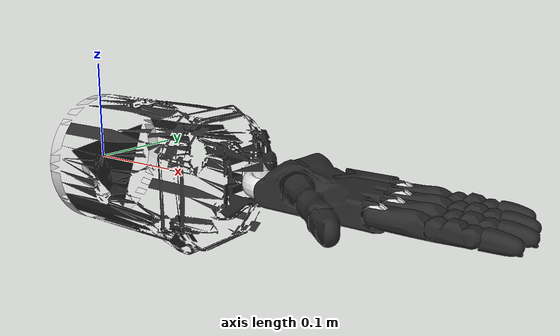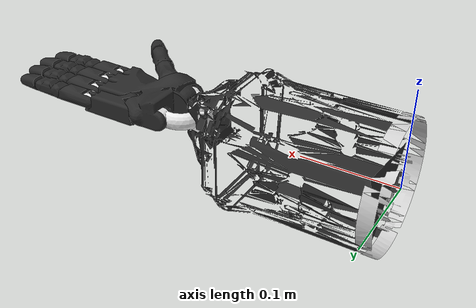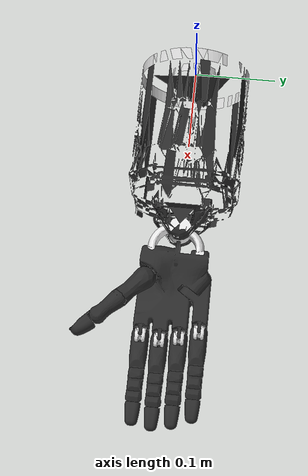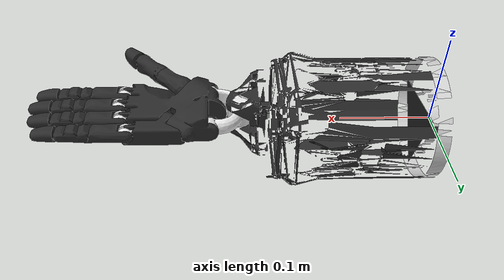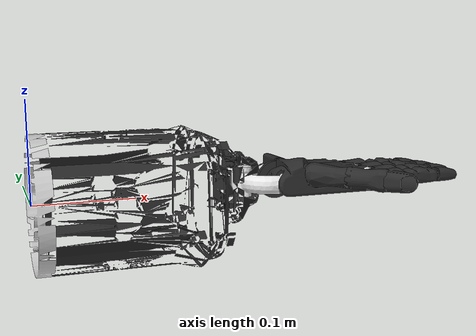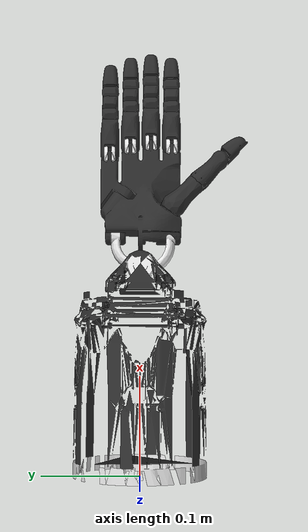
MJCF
<mujoco model="right_shadow_hand">
  <compiler angle="radian" meshdir="assets" autolimits="true"/>

  <option cone="elliptic" impratio="10"/>

  <default>
    <default class="right_hand">
      <mesh scale="0.001 0.001 0.001"/>
      <joint axis="1 0 0" damping="0.05" armature="0.0002" frictionloss="0.01"/>
      <position forcerange="-1 1"/>

      <default class="wrist">
        <joint damping="0.5"/>
        <default class="wrist_y">
          <joint axis="0 1 0" range="-0.523599 0.174533"/>
          <position kp="10" ctrlrange="-0.523599 0.174533" forcerange="-10 10"/>
        </default>
        <default class="wrist_x">
          <joint range="-0.698132 0.488692"/>
          <position kp="8" ctrlrange="-0.698132 0.488692" forcerange="-5 5"/>
        </default>
      </default>

      <default class="thumb">
        <default class="thbase">
          <joint axis="0 0 -1" range="-1.0472 1.0472"/>
          <position kp="0.4" ctrlrange="-1.0472 1.0472" forcerange="-3 3"/>
        </default>
        <default class="thproximal">
          <joint range="0 1.22173"/>
          <position ctrlrange="0 1.22173" forcerange="-2 2"/>
        </default>
        <default class="thhub">
          <joint range="-0.20944 0.20944"/>
          <position kp="0.5" ctrlrange="-0.20944 0.20944"/>
        </default>
        <default class="thmiddle">
          <joint axis="0 -1 0" range="-0.698132 0.698132"/>
          <position kp="1.5" ctrlrange="-0.698132 0.698132"/>
        </default>
        <default class="thdistal">
          <joint range="-0.261799 1.5708"/>
          <position ctrlrange="-0.261799 1.5708"/>
        </default>
      </default>

      <default class="metacarpal">
        <joint axis="0.573576 0 0.819152" range="0 0.785398"/>
        <position ctrlrange="0 0.785398"/>
      </default>
      <default class="knuckle">
        <joint axis="0 -1 0" range="-0.349066 0.349066"/>
        <position ctrlrange="-0.349066 0.349066"/>
      </default>
      <default class="proximal">
        <joint range="-0.261799 1.5708"/>
        <position ctrlrange="-0.261799 1.5708"/>
      </default>
      <default class="middle_distal">
        <joint range="0 1.5708"/>
        <position kp="0.5" ctrlrange="0 3.1415"/>
      </default>

      <default class="plastic">
        <geom solimp="0.5 0.99 0.0001" solref="0.005 1"/>
        <default class="plastic_visual">
          <geom type="mesh" material="black" contype="0" conaffinity="0" group="2"/>
        </default>
        <default class="plastic_collision">
          <geom group="3"/>
        </default>
      </default>
    </default>
  </default>

  <asset>
    <material name="black" specular="0.5" shininess="0.25" rgba="0.16355 0.16355 0.16355 1"/>
    <material name="gray" specular="0.0" shininess="0.25" rgba="0.80848 0.80848 0.80848 1"/>
    <material name="metallic" specular="0" shininess="0.25" rgba="0.9 0.9 0.9 1"/>

    <mesh name="forearm_0" class="right_hand" file="forearm_0.dec.stl"/>
    <mesh name="forearm_1" class="right_hand" file="forearm_1.dec.stl"/>
    <mesh name="forearm_collision" class="right_hand" file="forearm_collision.dec.stl"/>
    <mesh name="wrist" class="right_hand" file="wrist.dec.stl"/>
    <mesh name="palm" class="right_hand" file="palm.dec.stl"/>
    <mesh name="f_knuckle" class="right_hand" file="f_knuckle.dec.stl"/>
    <mesh name="f_proximal" class="right_hand" file="f_proximal.dec.stl"/>
    <mesh name="f_middle" class="right_hand" file="f_middle.dec.stl"/>
    <mesh name="f_distal_pst" class="right_hand" file="f_distal_pst.dec.stl"/>
    <mesh name="lf_metacarpal" class="right_hand" file="lf_metacarpal.dec.stl"/>
    <mesh name="th_proximal" class="right_hand" file="th_proximal.dec.stl"/>
    <mesh name="th_middle" class="right_hand" file="th_middle.dec.stl"/>
    <mesh name="th_distal_pst" class="right_hand" file="th_distal_pst.dec.stl"/>
  </asset>

  <worldbody>
    <body name="rh_forearm" childclass="right_hand" quat="0 1 0 1">
      <inertial mass="3" pos="0 0 0.09" diaginertia="0.0138 0.0138 0.00744"/>
      <geom class="plastic_visual" mesh="forearm_0" material="gray"/>
      <geom class="plastic_visual" mesh="forearm_1"/>
      <geom class="plastic_collision" type="mesh" mesh="forearm_collision"/>
      <geom class="plastic_collision" size="0.035 0.035 0.035" pos="0.01 0.0 0.181" quat="0.380188 0.924909 0 0"
        type="box"/>
      <body name="rh_wrist" pos="0.01 0 0.21301" quat="1 0 0 1">
        <inertial mass="0.1" pos="0 0 0.029" quat="0.5 0.5 0.5 0.5" diaginertia="6.4e-05 4.38e-05 3.5e-05"/>
        <joint class="wrist_y" name="rh_WRJ2"/>
        <geom class="plastic_visual" mesh="wrist" material="metallic"/>
        <geom size="0.0135 0.015" quat="0.499998 0.5 0.5 -0.500002" type="cylinder" class="plastic_collision"/>
        <geom size="0.011 0.005" pos="-0.026 0 0.034" quat="1 0 1 0" type="cylinder" class="plastic_collision"/>
        <geom size="0.011 0.005" pos="0.031 0 0.034" quat="1 0 1 0" type="cylinder" class="plastic_collision"/>
        <geom size="0.0135 0.009 0.005" pos="-0.021 0 0.011" quat="0.923879 0 0.382684 0" type="box"
          class="plastic_collision"/>
        <geom size="0.0135 0.009 0.005" pos="0.026 0 0.01" quat="0.923879 0 -0.382684 0" type="box"
          class="plastic_collision"/>
        <body name="rh_palm" pos="0 0 0.034">
          <inertial mass="0.3" pos="0 0 0.035" quat="1 0 0 1" diaginertia="0.0005287 0.0003581 0.000191"/>
          <joint class="wrist_x" name="rh_WRJ1"/>
          <site name="grasp_site" pos="0 -.035 0.09" group="4"/>
          <geom class="plastic_visual" mesh="palm"/>
          <geom size="0.031 0.0035 0.049" pos="0.011 0.0085 0.038" type="box" class="plastic_collision"/>
          <geom size="0.018 0.0085 0.049" pos="-0.002 -0.0035 0.038" type="box" class="plastic_collision"/>
          <geom size="0.013 0.0085 0.005" pos="0.029 -0.0035 0.082" type="box" class="plastic_collision"/>
          <geom size="0.013 0.007 0.009" pos="0.0265 -0.001 0.07" quat="0.987241 0.0990545 0.0124467 0.124052"
            type="box" class="plastic_collision"/>
          <geom size="0.0105 0.0135 0.012" pos="0.0315 -0.0085 0.001" type="box" class="plastic_collision"/>
          <geom size="0.011 0.0025 0.015" pos="0.0125 -0.015 0.004" quat="0.971338 0 0 -0.237703" type="box"
            class="plastic_collision"/>
          <geom size="0.009 0.012 0.002" pos="0.011 0 0.089" type="box" class="plastic_collision"/>
          <geom size="0.01 0.012 0.02" pos="-0.03 0 0.009" type="box" class="plastic_collision"/>
          <body name="rh_ffknuckle" pos="0.033 0 0.095">
            <inertial mass="0.008" pos="0 0 0" quat="0.5 0.5 -0.5 0.5" diaginertia="3.2e-07 2.6e-07 2.6e-07"/>
            <joint name="rh_FFJ4" class="knuckle"/>
            <geom pos="0 0 0.0005" class="plastic_visual" mesh="f_knuckle" material="metallic"/>
            <geom size="0.009 0.009" quat="1 0 1 0" type="cylinder" class="plastic_collision"/>
            <body name="rh_ffproximal">
              <inertial mass="0.03" pos="0 0 0.0225" quat="1 0 0 1" diaginertia="1e-05 9.8e-06 1.8e-06"/>
              <joint name="rh_FFJ3" class="proximal"/>
              <geom class="plastic_visual" mesh="f_proximal"/>
              <geom size="0.009 0.02" pos="0 0 0.025" type="capsule" class="plastic_collision"/>
              <body name="rh_ffmiddle" pos="0 0 0.045">
                <inertial mass="0.017" pos="0 0 0.0125" quat="1 0 0 1" diaginertia="2.7e-06 2.6e-06 8.7e-07"/>
                <joint name="rh_FFJ2" class="middle_distal"/>
                <geom class="plastic_visual" mesh="f_middle"/>
                <geom size="0.009 0.0125" pos="0 0 0.0125" type="capsule" class="plastic_collision"/>
                <body name="rh_ffdistal" pos="0 0 0.025">
                  <inertial mass="0.013" pos="0 0 0.0130769" quat="1 0 0 1"
                    diaginertia="1.28092e-06 1.12092e-06 5.3e-07"/>
                  <joint name="rh_FFJ1" class="middle_distal"/>
                  <geom class="plastic_visual" mesh="f_distal_pst"/>
                  <geom class="plastic_collision" type="mesh" mesh="f_distal_pst"/>
                </body>
              </body>
            </body>
          </body>
          <body name="rh_mfknuckle" pos="0.011 0 0.099">
            <inertial mass="0.008" pos="0 0 0" quat="0.5 0.5 -0.5 0.5" diaginertia="3.2e-07 2.6e-07 2.6e-07"/>
            <joint name="rh_MFJ4" class="knuckle"/>
            <geom pos="0 0 0.0005" class="plastic_visual" mesh="f_knuckle" material="metallic"/>
            <geom size="0.009 0.009" quat="1 0 1 0" type="cylinder" class="plastic_collision"/>
            <body name="rh_mfproximal">
              <inertial mass="0.03" pos="0 0 0.0225" quat="1 0 0 1" diaginertia="1e-05 9.8e-06 1.8e-06"/>
              <joint name="rh_MFJ3" class="proximal"/>
              <geom class="plastic_visual" mesh="f_proximal"/>
              <geom size="0.009 0.02" pos="0 0 0.025" type="capsule" class="plastic_collision"/>
              <body name="rh_mfmiddle" pos="0 0 0.045">
                <inertial mass="0.017" pos="0 0 0.0125" quat="1 0 0 1" diaginertia="2.7e-06 2.6e-06 8.7e-07"/>
                <joint name="rh_MFJ2" class="middle_distal"/>
                <geom class="plastic_visual" mesh="f_middle"/>
                <geom size="0.009 0.0125" pos="0 0 0.0125" type="capsule" class="plastic_collision"/>
                <body name="rh_mfdistal" pos="0 0 0.025">
                  <inertial mass="0.013" pos="0 0 0.0130769" quat="1 0 0 1"
                    diaginertia="1.28092e-06 1.12092e-06 5.3e-07"/>
                  <joint name="rh_MFJ1" class="middle_distal"/>
                  <geom class="plastic_visual" mesh="f_distal_pst"/>
                  <geom class="plastic_collision" type="mesh" mesh="f_distal_pst"/>
                </body>
              </body>
            </body>
          </body>
          <body name="rh_rfknuckle" pos="-0.011 0 0.095">
            <inertial mass="0.008" pos="0 0 0" quat="0.5 0.5 -0.5 0.5" diaginertia="3.2e-07 2.6e-07 2.6e-07"/>
            <joint name="rh_RFJ4" class="knuckle" axis="0 1 0"/>
            <geom pos="0 0 0.0005" class="plastic_visual" mesh="f_knuckle" material="metallic"/>
            <geom size="0.009 0.009" quat="1 0 1 0" type="cylinder" class="plastic_collision"/>
            <body name="rh_rfproximal">
              <inertial mass="0.03" pos="0 0 0.0225" quat="1 0 0 1" diaginertia="1e-05 9.8e-06 1.8e-06"/>
              <joint name="rh_RFJ3" class="proximal"/>
              <geom class="plastic_visual" mesh="f_proximal"/>
              <geom size="0.009 0.02" pos="0 0 0.025" type="capsule" class="plastic_collision"/>
              <body name="rh_rfmiddle" pos="0 0 0.045">
                <inertial mass="0.017" pos="0 0 0.0125" quat="1 0 0 1" diaginertia="2.7e-06 2.6e-06 8.7e-07"/>
                <joint name="rh_RFJ2" class="middle_distal"/>
                <geom class="plastic_visual" mesh="f_middle"/>
                <geom size="0.009 0.0125" pos="0 0 0.0125" type="capsule" class="plastic_collision"/>
                <body name="rh_rfdistal" pos="0 0 0.025">
                  <inertial mass="0.013" pos="0 0 0.0130769" quat="1 0 0 1"
                    diaginertia="1.28092e-06 1.12092e-06 5.3e-07"/>
                  <joint name="rh_RFJ1" class="middle_distal"/>
                  <geom class="plastic_visual" mesh="f_distal_pst"/>
                  <geom class="plastic_collision" type="mesh" mesh="f_distal_pst"/>
                </body>
              </body>
            </body>
          </body>
          <body name="rh_lfmetacarpal" pos="-0.033 0 0.02071">
            <inertial mass="0.03" pos="0 0 0.04" quat="1 0 0 1" diaginertia="1.638e-05 1.45e-05 4.272e-06"/>
            <joint name="rh_LFJ5" class="metacarpal"/>
            <geom class="plastic_visual" mesh="lf_metacarpal"/>
            <geom size="0.011 0.012 0.025" pos="0.002 0 0.033" type="box" class="plastic_collision"/>
            <body name="rh_lfknuckle" pos="0 0 0.06579">
              <inertial mass="0.008" pos="0 0 0" quat="0.5 0.5 -0.5 0.5" diaginertia="3.2e-07 2.6e-07 2.6e-07"/>
              <joint name="rh_LFJ4" class="knuckle" axis="0 1 0"/>
              <geom pos="0 0 0.0005" class="plastic_visual" mesh="f_knuckle" material="metallic"/>
              <geom size="0.009 0.009" quat="1 0 1 0" type="cylinder" class="plastic_collision"/>
              <body name="rh_lfproximal">
                <inertial mass="0.03" pos="0 0 0.0225" quat="1 0 0 1" diaginertia="1e-05 9.8e-06 1.8e-06"/>
                <joint name="rh_LFJ3" class="proximal"/>
                <geom class="plastic_visual" mesh="f_proximal"/>
                <geom size="0.009 0.02" pos="0 0 0.025" type="capsule" class="plastic_collision"/>
                <body name="rh_lfmiddle" pos="0 0 0.045">
                  <inertial mass="0.017" pos="0 0 0.0125" quat="1 0 0 1" diaginertia="2.7e-06 2.6e-06 8.7e-07"/>
                  <joint name="rh_LFJ2" class="middle_distal"/>
                  <geom class="plastic_visual" mesh="f_middle"/>
                  <geom size="0.009 0.0125" pos="0 0 0.0125" type="capsule" class="plastic_collision"/>
                  <body name="rh_lfdistal" pos="0 0 0.025">
                    <inertial mass="0.013" pos="0 0 0.0130769" quat="1 0 0 1"
                      diaginertia="1.28092e-06 1.12092e-06 5.3e-07"/>
                    <joint name="rh_LFJ1" class="middle_distal"/>
                    <geom class="plastic_visual" mesh="f_distal_pst"/>
                    <geom class="plastic_collision" type="mesh" mesh="f_distal_pst"/>
                  </body>
                </body>
              </body>
            </body>
          </body>
          <body name="rh_thbase" pos="0.034 -0.00858 0.029" quat="0.92388 0 0.382683 0">
            <inertial mass="0.01" pos="0 0 0" diaginertia="1.6e-07 1.6e-07 1.6e-07"/>
            <joint name="rh_THJ5" class="thbase"/>
            <geom class="plastic_collision" size="0.013"/>
            <body name="rh_thproximal">
              <inertial mass="0.04" pos="0 0 0.019" diaginertia="1.36e-05 1.36e-05 3.13e-06"/>
              <joint name="rh_THJ4" class="thproximal"/>
              <geom class="plastic_visual" mesh="th_proximal"/>
              <geom class="plastic_collision" size="0.0105 0.009" pos="0 0 0.02" type="capsule"/>
              <body name="rh_thhub" pos="0 0 0.038">
                <inertial mass="0.005" pos="0 0 0" diaginertia="1e-06 1e-06 3e-07"/>
                <joint name="rh_THJ3" class="thhub"/>
                <geom size="0.011" class="plastic_collision"/>
                <body name="rh_thmiddle">
                  <inertial mass="0.02" pos="0 0 0.016" diaginertia="5.1e-06 5.1e-06 1.21e-06"/>
                  <joint name="rh_THJ2" class="thmiddle"/>
                  <geom class="plastic_visual" mesh="th_middle"/>
                  <geom size="0.009 0.009" pos="0 0 0.012" type="capsule" class="plastic_collision"/>
                  <geom size="0.01" pos="0 0 0.03" class="plastic_collision"/>
                  <body name="rh_thdistal" pos="0 0 0.032" quat="1 0 0 -1">
                    <inertial mass="0.017" pos="0 0 0.0145588" quat="1 0 0 1"
                      diaginertia="2.37794e-06 2.27794e-06 1e-06"/>
                    <joint name="rh_THJ1" class="thdistal"/>
                    <geom class="plastic_visual" mesh="th_distal_pst"/>
                    <geom class="plastic_collision" type="mesh" mesh="th_distal_pst"/>
                  </body>
                </body>
              </body>
            </body>
          </body>
        </body>
      </body>
    </body>
  </worldbody>

  <contact>
    <exclude body1="rh_wrist" body2="rh_forearm"/>
    <exclude body1="rh_thproximal" body2="rh_thmiddle"/>
  </contact>

  <tendon>
    <fixed name="rh_FFJ0">
      <joint joint="rh_FFJ2" coef="1"/>
      <joint joint="rh_FFJ1" coef="1"/>
    </fixed>
    <fixed name="rh_MFJ0">
      <joint joint="rh_MFJ2" coef="1"/>
      <joint joint="rh_MFJ1" coef="1"/>
    </fixed>
    <fixed name="rh_RFJ0">
      <joint joint="rh_RFJ2" coef="1"/>
      <joint joint="rh_RFJ1" coef="1"/>
    </fixed>
    <fixed name="rh_LFJ0">
      <joint joint="rh_LFJ2" coef="1"/>
      <joint joint="rh_LFJ1" coef="1"/>
    </fixed>
  </tendon>

  <actuator>
    <position name="rh_A_WRJ2" joint="rh_WRJ2" class="wrist_y"/>
    <position name="rh_A_WRJ1" joint="rh_WRJ1" class="wrist_x"/>
    <position name="rh_A_THJ5" joint="rh_THJ5" class="thbase"/>
    <position name="rh_A_THJ4" joint="rh_THJ4" class="thproximal"/>
    <position name="rh_A_THJ3" joint="rh_THJ3" class="thhub"/>
    <position name="rh_A_THJ2" joint="rh_THJ2" class="thmiddle"/>
    <position name="rh_A_THJ1" joint="rh_THJ1" class="thdistal"/>
    <position name="rh_A_FFJ4" joint="rh_FFJ4" class="knuckle"/>
    <position name="rh_A_FFJ3" joint="rh_FFJ3" class="proximal"/>
    <position name="rh_A_FFJ0" tendon="rh_FFJ0" class="middle_distal"/>
    <position name="rh_A_MFJ4" joint="rh_MFJ4" class="knuckle"/>
    <position name="rh_A_MFJ3" joint="rh_MFJ3" class="proximal"/>
    <position name="rh_A_MFJ0" tendon="rh_MFJ0" class="middle_distal"/>
    <position name="rh_A_RFJ4" joint="rh_RFJ4" class="knuckle"/>
    <position name="rh_A_RFJ3" joint="rh_RFJ3" class="proximal"/>
    <position name="rh_A_RFJ0" tendon="rh_RFJ0" class="middle_distal"/>
    <position name="rh_A_LFJ5" joint="rh_LFJ5" class="metacarpal"/>
    <position name="rh_A_LFJ4" joint="rh_LFJ4" class="knuckle"/>
    <position name="rh_A_LFJ3" joint="rh_LFJ3" class="proximal"/>
    <position name="rh_A_LFJ0" tendon="rh_LFJ0" class="middle_distal"/>
  </actuator>
</mujoco>
